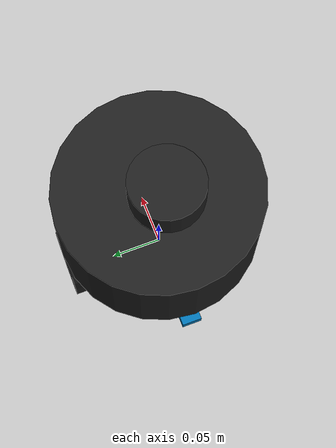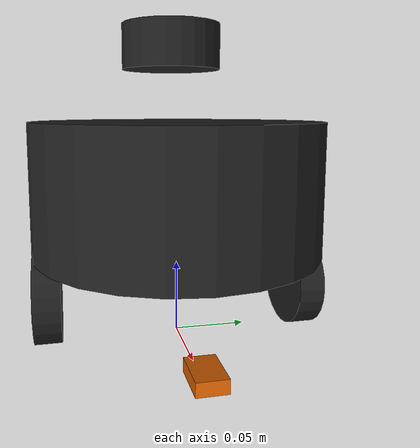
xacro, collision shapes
<?xml version="1.0" ?>

<robot name="ankbot" xmlns:xacro="http://ros.org/wiki/xacro">
  <xacro:include filename="$(find ankbot_description)/urdf/common_properties.xacro"/>
  <xacro:include filename="$(find ankbot_description)/urdf/ankbot.gazebo.xacro"/>

  <link name="base_footprint"/>

  <joint name="base_joint" type="fixed">
    <parent link="base_footprint"/>
    <child link="base_link"/>
    <origin xyz="0 0 0.01" rpy="0 0 0"/>
  </joint>

  <link name="base_link">
    <visual>
      <origin xyz="0 0 0.062" rpy="0 0 1.5707"/>
      <geometry>
        <mesh filename="package://ankbot_description/meshes/robot_base.dae"/>
      </geometry>
      <material name="light_black"/>
    </visual>

    <collision>
      <origin xyz="0 0 0.095" rpy="0 0 0"/>
      <geometry>
        <cylinder length="0.09" radius="0.1"/>
      </geometry>
    </collision>

    <inertial>
      <origin xyz="0 0 0" rpy="0 0 0"/>
      <mass value="12.2573504e-01"/>
      <inertia ixx="2.2124416e-03" ixy="-1.2294101e-05" ixz="3.4938785e-05"
               iyy="2.1193702e-03" iyz="-5.0120904e-06"
               izz="2.0064271e-03" />
    </inertial>
  </link>  <joint name="wheel_left_joint" type="continuous">
    <parent link="base_link"/>
    <child link="wheel_left_link"/>
    <origin xyz="0.0 0.09 0.023" rpy="-1.57 0 0"/>
    <axis xyz="0 0 1"/>
  </joint>

  <link name="wheel_left_link">
    <visual>
      <origin xyz="0 0 0.014" rpy="0 1.5707 0"/>
      <geometry>
        <mesh filename="package://ankbot_description/meshes/robot_wheel.dae"/>
      </geometry>
      <material name="dark"/>
    </visual>

    <collision>
      <origin xyz="0 0 0" rpy="0 0 0"/>
      <geometry>
        <cylinder length="0.018" radius="0.033"/>
      </geometry>
    </collision>

    <inertial>
      <origin xyz="0 0 0" />
      <mass value="2.8498940e-02" />
      <inertia ixx="1.1175580e-05" ixy="-4.2369783e-11" ixz="-5.9381719e-09"
               iyy="1.1192413e-05" iyz="-1.4400107e-11"
               izz="2.0712558e-05" />
      </inertial>
  </link>

  <joint name="wheel_right_joint" type="continuous">
    <parent link="base_link"/>
    <child link="wheel_right_link"/>
    <origin xyz="0.0 -0.090 0.023" rpy="-1.57 0 0"/>
    <axis xyz="0 0 1"/>
  </joint>

  <link name="wheel_right_link">
    <visual>
      <origin xyz="0 0 -0.014" rpy="0 -1.5707 0"/>
      <geometry>
        <mesh filename="package://ankbot_description/meshes/robot_wheel.dae"/>
      </geometry>
      <material name="dark"/>
    </visual>

    <collision>
      <origin xyz="0 0 0" rpy="0 0 0"/>
      <geometry>
        <cylinder length="0.018" radius="0.033"/>
      </geometry>
    </collision>

    <inertial>
      <origin xyz="0 0 0" />
      <mass value="2.8498940e-02" />
      <inertia ixx="1.1175580e-05" ixy="-4.2369783e-11" ixz="-5.9381719e-09"
               iyy="1.1192413e-05" iyz="-1.4400107e-11"
               izz="2.0712558e-05" />
      </inertial>
  </link>

  <joint name="caster_back_joint" type="fixed">
    <parent link="base_link"/>
    <child link="caster_back_link"/>
    <origin xyz="-0.081 0 -0.0025" rpy="-1.57 0 0"/>
  </joint>

  <link name="caster_back_link">
    <collision>
      <origin xyz="0 0.001 0" rpy="0 0 0"/>
      <geometry>
        <box size="0.030 0.009 0.020"/>
      </geometry>
    </collision>

    <inertial>
      <origin xyz="0 0 0" />
      <mass value="0.005" />
      <inertia ixx="0.001" ixy="0.0" ixz="0.0"
               iyy="0.001" iyz="0.0"
               izz="0.001" />
    </inertial>
  </link>

  <joint name="caster_front_joint" type="fixed">
    <parent link="base_link"/>
    <child link="caster_front_link"/>
    <origin xyz="0.081 0 -0.0025" rpy="-1.57 0 0"/>
  </joint>

  <link name="caster_front_link">
    <collision>
      <origin xyz="0 0.001 0" rpy="0 0 0"/>
      <geometry>
        <box size="0.030 0.009 0.020"/>
      </geometry>
    </collision>

    <inertial>
      <origin xyz="0 0 0" />
      <mass value="0.005" />
      <inertia ixx="0.001" ixy="0.0" ixz="0.0"
               iyy="0.001" iyz="0.0"
               izz="0.001" />
    </inertial>
  </link>

  <joint name="imu_joint" type="fixed">
    <parent link="base_link"/>
    <child link="imu_link"/>
    <origin xyz="0.07 -0.0025 0.12" rpy="0 0 0"/>
  </joint>

  <link name="imu_link"/>

  <joint name="scan_joint" type="fixed">
    <parent link="base_link"/>
    <child link="base_scan"/>
    <origin xyz="-0.02 0 0.172" rpy="0 0 0"/>
  </joint>

  <link name="base_scan">
    <collision>
      <origin xyz="0.0 0 0.02" rpy="0 0 0"/>
      <geometry>
        <cylinder length="0.0315" radius="0.035"/>
      </geometry>
    </collision>

    <inertial>
      <mass value="0.114" />
      <origin xyz="0 0 0" />
      <inertia ixx="0.001" ixy="0.0" ixz="0.0"
               iyy="0.001" iyz="0.0"
               izz="0.001" />
    </inertial>
  </link>

</robot>
